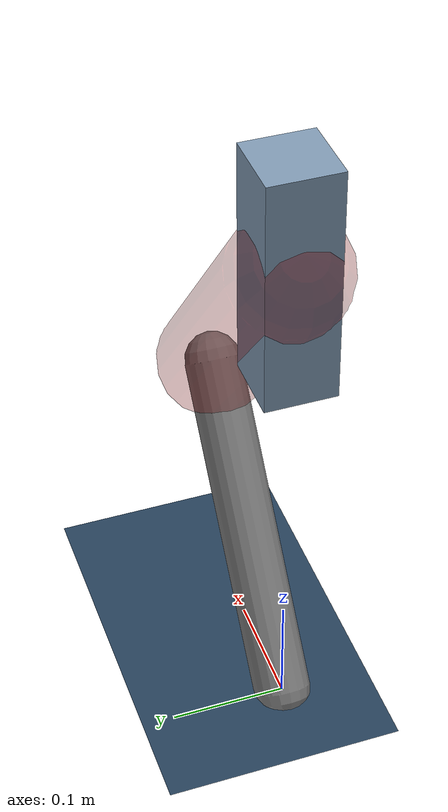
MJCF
<mujoco model="Hopper2D">
	<compiler inertiafromgeom="true" angle="radian" />
	<option timestep="0.001" integrator="implicit" cone="elliptic" solver="Newton" tolerance="1e-10" />

	<default>
		<geom contype="1" conaffinity="1" condim="3" friction="2 0.005 0.0001" solref="0.005 1" />
		<joint limited="true" damping="0.1" />
	</default>

	<asset>
		<texture name="skybox" type="skybox" builtin="gradient" rgb1=".4 .6 .8" rgb2="0 0 0" width="800" height="800" />
		<texture name="grid" type="2d" builtin="checker" rgb1=".1 .2 .3" rgb2=".2 .3 .4" width="300" height="300" mark="edge" markrgb=".2 .3 .4" />
		<material name="ground" texture="grid" texrepeat="1 1" texuniform="true" reflectance="0.1" />
		<material name="leg" rgba="0.5 0.6 0.7 1" />
	</asset>

	<worldbody>

		<geom name="floor" type="plane" size="5 5 0.25" material="ground" />

		<light directional="false" diffuse="0.8 0.8 0.8" specular="0.3 0.3 0.3" pos="0 0 2" dir="0 0 -1" />
		<light mode="targetbodycom" target="base" directional="false" diffuse="0.8 0.8 0.8" specular="0.3 0.3 0.3" pos="0 0 2" dir="0 0 -1" />

		<camera name="fixed" pos="0 -2 1" xyaxes="1 0 0 0 0 1" />
		<camera name="tracking" mode="trackcom" pos="0 -3 1" />

		<body name="root" pos="0 0 0.45266831712133104">
			<joint name="slide_x" type="slide" axis="1 0 0" range="-100 100" />
			<joint name="slide_z" type="slide" axis="0 0 1" range="0 10" />

			<body name="base" pos="0 0 0">
				<geom name="torso" type="box" size="0.03 0.03 0.1" mass="1.093" material="leg" />

				<body name="link1" pos="0 0 0" euler="0 0.8737907433385622 0">
					<joint type="hinge" axis="0 -1 0" pos="0 0 0" name="hinge1" limited="true" range="-3.14 3.14" stiffness="0" damping="0.1" />
					<geom name="thigh" type="capsule" fromto="0 0 0 0.2846770831562069 0 0" size="0.05" rgba="0.5 0 0 0.3" mass="0.947560416206138" />

					<body name="link2" pos="0.2846770831562069 0 0" euler="0 1.3592177097855107 0">
						<joint type="hinge" axis="0 -1 0" pos="0 0 0" name="hinge2" limited="true" range="-3.14 3.14" stiffness="0" damping="0.1" />
						<geom name="shank" type="capsule" fromto="0 0 0 0.29720642373457284 0 0" size="0.025" mass="0.4811651389876583" />

					</body>
				</body>
			</body>
		</body>
	</worldbody>

	<actuator>
		<motor name="torque1" joint="hinge1" ctrlrange="-10.783967269795472 10.783967269795472" ctrllimited="true" gear="1" />
		<motor name="torque2" joint="hinge2" ctrlrange="-12.85976201738445 12.85976201738445" ctrllimited="true" gear="1" />
	</actuator>
</mujoco>
